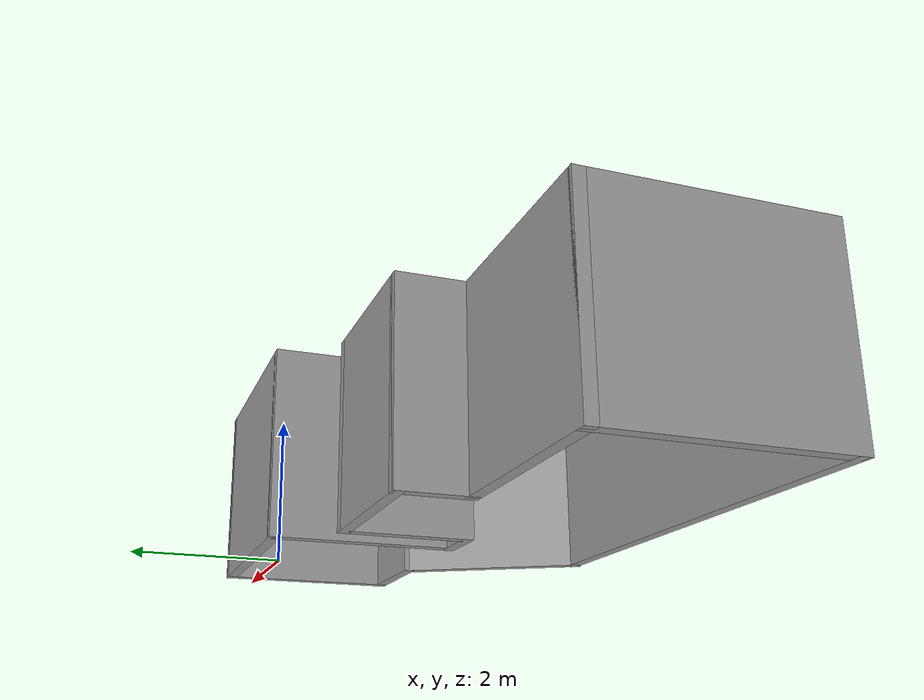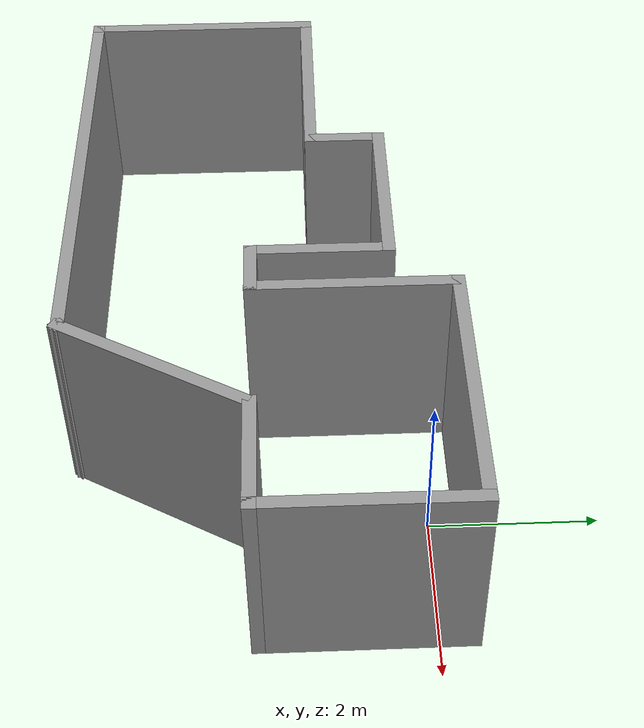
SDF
<?xml version='1.0'?>
<sdf version='1.7'>
  <model name='fuck_house_1'>
    <pose>-2.63 -1.86118 0 0 -0 0</pose>
    <link name='Wall_0'>
      <collision name='Wall_0_Collision'>
        <geometry>
          <box>
            <size>3 0.15 2.5</size>
          </box>
        </geometry>
        <pose>0 0 1.25 0 -0 0</pose>
      </collision>
      <visual name='Wall_0_Visual'>
        <pose>0 0 1.25 0 -0 0</pose>
        <geometry>
          <box>
            <size>3 0.15 2.5</size>
          </box>
        </geometry>
        <material>
          <script>
            <uri>file://media/materials/scripts/gazebo.material</uri>
            <name>Gazebo/Grey</name>
          </script>
          <ambient>1 1 1 1</ambient>
        </material>
        <meta>
          <layer>0</layer>
        </meta>
      </visual>
      <pose>-4.2 -0.783817 0 0 -0 -1.5708</pose>
    </link>
    <link name='Wall_1'>
      <collision name='Wall_1_Collision'>
        <geometry>
          <box>
            <size>6 0.15 2.5</size>
          </box>
        </geometry>
        <pose>0 0 1.25 0 -0 0</pose>
      </collision>
      <visual name='Wall_1_Visual'>
        <pose>0 0 1.25 0 -0 0</pose>
        <geometry>
          <box>
            <size>6 0.15 2.5</size>
          </box>
        </geometry>
        <material>
          <script>
            <uri>file://media/materials/scripts/gazebo.material</uri>
            <name>Gazebo/Grey</name>
          </script>
          <ambient>1 1 1 1</ambient>
        </material>
        <meta>
          <layer>0</layer>
        </meta>
      </visual>
      <pose>-1.275 -2.20882 0 0 -0 0</pose>
    </link>
    <link name='Wall_10'>
      <collision name='Wall_10_Collision'>
        <geometry>
          <box>
            <size>1.75 0.15 2.5</size>
          </box>
        </geometry>
        <pose>0 0 1.25 0 -0 0</pose>
      </collision>
      <visual name='Wall_10_Visual'>
        <pose>0 0 1.25 0 -0 0</pose>
        <geometry>
          <box>
            <size>1.75 0.15 2.5</size>
          </box>
        </geometry>
        <material>
          <script>
            <uri>file://media/materials/scripts/gazebo.material</uri>
            <name>Gazebo/Grey</name>
          </script>
          <ambient>1 1 1 1</ambient>
        </material>
        <meta>
          <layer>0</layer>
        </meta>
      </visual>
      <pose>0.5 0.691183 0 0 -0 -1.5708</pose>
    </link>
    <link name='Wall_11'>
      <collision name='Wall_11_Collision'>
        <geometry>
          <box>
            <size>0.75 0.15 2.5</size>
          </box>
        </geometry>
        <pose>0 0 1.25 0 -0 0</pose>
      </collision>
      <visual name='Wall_11_Visual'>
        <pose>0 0 1.25 0 -0 0</pose>
        <geometry>
          <box>
            <size>0.75 0.15 2.5</size>
          </box>
        </geometry>
        <material>
          <script>
            <uri>file://media/materials/scripts/gazebo.material</uri>
            <name>Gazebo/Grey</name>
          </script>
          <ambient>1 1 1 1</ambient>
        </material>
        <meta>
          <layer>0</layer>
        </meta>
      </visual>
      <pose>0.8 -0.108817 0 0 -0 0</pose>
    </link>
    <link name='Wall_12'>
      <collision name='Wall_12_Collision'>
        <geometry>
          <box>
            <size>2.5 0.15 2.5</size>
          </box>
        </geometry>
        <pose>0 0 1.25 0 -0 0</pose>
      </collision>
      <visual name='Wall_12_Visual'>
        <pose>0 0 1.25 0 -0 0</pose>
        <geometry>
          <box>
            <size>2.5 0.15 2.5</size>
          </box>
        </geometry>
        <material>
          <script>
            <uri>file://media/materials/scripts/gazebo.material</uri>
            <name>Gazebo/Grey</name>
          </script>
          <ambient>1 1 1 1</ambient>
        </material>
        <meta>
          <layer>0</layer>
        </meta>
      </visual>
      <pose>1.1 1.06618 0 0 -0 1.5708</pose>
    </link>
    <link name='Wall_13'>
      <collision name='Wall_13_Collision'>
        <geometry>
          <box>
            <size>3.25 0.15 2.5</size>
          </box>
        </geometry>
        <pose>0 0 1.25 0 -0 0</pose>
      </collision>
      <visual name='Wall_13_Visual'>
        <pose>0 0 1.25 0 -0 0</pose>
        <geometry>
          <box>
            <size>3.25 0.15 2.5</size>
          </box>
        </geometry>
        <material>
          <script>
            <uri>file://media/materials/scripts/gazebo.material</uri>
            <name>Gazebo/Grey</name>
          </script>
          <ambient>1 1 1 1</ambient>
        </material>
        <meta>
          <layer>0</layer>
        </meta>
      </visual>
      <pose>2.65 2.24118 0 0 -0 0</pose>
    </link>
    <link name='Wall_14'>
      <collision name='Wall_14_Collision'>
        <geometry>
          <box>
            <size>2.5 0.15 2.5</size>
          </box>
        </geometry>
        <pose>0 0 1.25 0 -0 0</pose>
      </collision>
      <visual name='Wall_14_Visual'>
        <pose>0 0 1.25 0 -0 0</pose>
        <geometry>
          <box>
            <size>2.5 0.15 2.5</size>
          </box>
        </geometry>
        <material>
          <script>
            <uri>file://media/materials/scripts/gazebo.material</uri>
            <name>Gazebo/Grey</name>
          </script>
          <ambient>1 1 1 1</ambient>
        </material>
        <meta>
          <layer>0</layer>
        </meta>
      </visual>
      <pose>4.2 1.06618 0 0 -0 -1.5708</pose>
    </link>
    <link name='Wall_15'>
      <collision name='Wall_15_Collision'>
        <geometry>
          <box>
            <size>1.5 0.15 2.5</size>
          </box>
        </geometry>
        <pose>0 0 1.25 0 -0 0</pose>
      </collision>
      <visual name='Wall_15_Visual'>
        <pose>0 0 1.25 0 -0 0</pose>
        <geometry>
          <box>
            <size>1.5 0.15 2.5</size>
          </box>
        </geometry>
        <material>
          <script>
            <uri>file://media/materials/scripts/gazebo.material</uri>
            <name>Gazebo/Grey</name>
          </script>
          <ambient>1 1 1 1</ambient>
        </material>
        <meta>
          <layer>0</layer>
        </meta>
      </visual>
      <pose>3.525 -0.108817 0 0 -0 3.14159</pose>
    </link>
    <link name='Wall_2'>
      <collision name='Wall_2_Collision'>
        <geometry>
          <box>
            <size>0.160538 0.15 2.5</size>
          </box>
        </geometry>
        <pose>0 0 1.25 0 -0 0</pose>
      </collision>
      <visual name='Wall_2_Visual'>
        <pose>0 0 1.25 0 -0 0</pose>
        <geometry>
          <box>
            <size>0.160538 0.15 2.5</size>
          </box>
        </geometry>
        <material>
          <script>
            <uri>file://media/materials/scripts/gazebo.material</uri>
            <name>Gazebo/Grey</name>
          </script>
          <ambient>1 1 1 1</ambient>
        </material>
        <meta>
          <layer>0</layer>
        </meta>
      </visual>
      <pose>1.64671 -2.2047 0 0 -0 2.24456</pose>
    </link>
    <link name='Wall_20'>
      <collision name='Wall_20_Collision'>
        <geometry>
          <box>
            <size>2.5 0.15 2.5</size>
          </box>
        </geometry>
        <pose>0 0 1.25 0 -0 0</pose>
      </collision>
      <visual name='Wall_20_Visual'>
        <pose>0 0 1.25 0 -0 0</pose>
        <geometry>
          <box>
            <size>2.5 0.15 2.5</size>
          </box>
        </geometry>
        <material>
          <script>
            <uri>file://media/materials/scripts/gazebo.material</uri>
            <name>Gazebo/Grey</name>
          </script>
          <ambient>1 1 1 1</ambient>
        </material>
        <meta>
          <layer>0</layer>
        </meta>
      </visual>
      <pose>2.23093 -1.19615 0 0 -0 -2.0944</pose>
    </link>
    <link name='Wall_7'>
      <collision name='Wall_7_Collision'>
        <geometry>
          <box>
            <size>2.75 0.15 2.5</size>
          </box>
        </geometry>
        <pose>0 0 1.25 0 -0 0</pose>
      </collision>
      <visual name='Wall_7_Visual'>
        <pose>0 0 1.25 0 -0 0</pose>
        <geometry>
          <box>
            <size>2.75 0.15 2.5</size>
          </box>
        </geometry>
        <material>
          <script>
            <uri>file://media/materials/scripts/gazebo.material</uri>
            <name>Gazebo/Grey</name>
          </script>
          <ambient>1 1 1 1</ambient>
        </material>
        <meta>
          <layer>0</layer>
        </meta>
      </visual>
      <pose>-2.9 0.641183 0 0 -0 0</pose>
    </link>
    <link name='Wall_8'>
      <collision name='Wall_8_Collision'>
        <geometry>
          <box>
            <size>1 0.15 2.5</size>
          </box>
        </geometry>
        <pose>0 0 1.25 0 -0 0</pose>
      </collision>
      <visual name='Wall_8_Visual'>
        <pose>0 0 1.25 0 -0 0</pose>
        <geometry>
          <box>
            <size>1 0.15 2.5</size>
          </box>
        </geometry>
        <material>
          <script>
            <uri>file://media/materials/scripts/gazebo.material</uri>
            <name>Gazebo/Grey</name>
          </script>
          <ambient>1 1 1 1</ambient>
        </material>
        <meta>
          <layer>0</layer>
        </meta>
      </visual>
      <pose>-1.6 1.06618 0 0 -0 1.5708</pose>
    </link>
    <link name='Wall_9'>
      <collision name='Wall_9_Collision'>
        <geometry>
          <box>
            <size>2.25 0.15 2.5</size>
          </box>
        </geometry>
        <pose>0 0 1.25 0 -0 0</pose>
      </collision>
      <visual name='Wall_9_Visual'>
        <pose>0 0 1.25 0 -0 0</pose>
        <geometry>
          <box>
            <size>2.25 0.15 2.5</size>
          </box>
        </geometry>
        <material>
          <script>
            <uri>file://media/materials/scripts/gazebo.material</uri>
            <name>Gazebo/Grey</name>
          </script>
          <ambient>1 1 1 1</ambient>
        </material>
        <meta>
          <layer>0</layer>
        </meta>
      </visual>
      <pose>-0.55 1.49118 0 0 -0 0</pose>
    </link>
    <static>1</static>
  </model>
</sdf>
